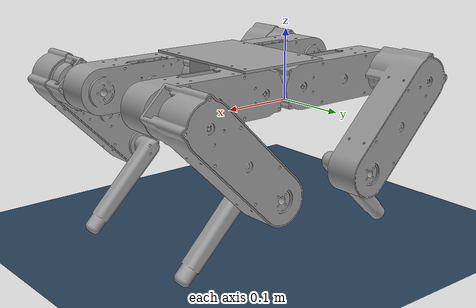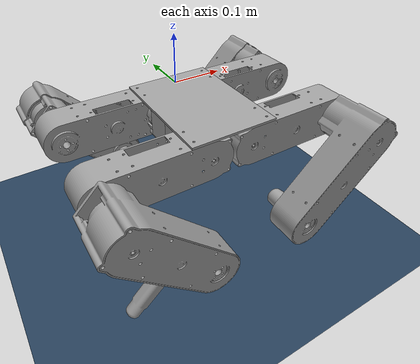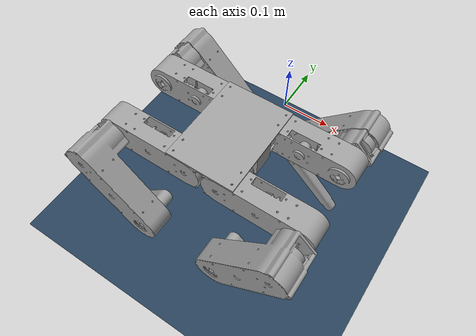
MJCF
<mujoco model="quadurdf">
  <compiler angle="radian"/>
  <asset>
    <mesh name="base_link" file="base_link.stl" scale="0.001 0.001 0.001"/>
    <mesh name="ACTUATOR_V2__HIP__v3_3" file="ACTUATOR_V2__HIP__v3_3.stl" scale="0.001 0.001 0.001"/>
    <mesh name="ACTUATOR_V2__HIP__v3_1" file="ACTUATOR_V2__HIP__v3_1.stl" scale="0.001 0.001 0.001"/>
    <mesh name="ACTUATOR_V2__HIP__v3_4" file="ACTUATOR_V2__HIP__v3_4.stl" scale="0.001 0.001 0.001"/>
    <mesh name="ACTUATOR_V2__HIP__v3_2" file="ACTUATOR_V2__HIP__v3_2.stl" scale="0.001 0.001 0.001"/>
    <mesh name="ACTUATOR_V2__KNEE__v6_1" file="ACTUATOR_V2__KNEE__v6_1.stl" scale="0.001 0.001 0.001"/>
    <mesh name="ACTUATOR_V2__KNEE__v6_2" file="ACTUATOR_V2__KNEE__v6_2.stl" scale="0.001 0.001 0.001"/>
    <mesh name="ACTUATOR_V2__KNEE__v6_3" file="ACTUATOR_V2__KNEE__v6_3.stl" scale="0.001 0.001 0.001"/>
    <mesh name="ACTUATOR_V2__KNEE__v6_4" file="ACTUATOR_V2__KNEE__v6_4.stl" scale="0.001 0.001 0.001"/>
    <mesh name="ANKLE_v3_1" file="ANKLE_v3_1.stl" scale="0.001 0.001 0.001"/>
    <mesh name="ANKLE_v3_2" file="ANKLE_v3_2.stl" scale="0.001 0.001 0.001"/>
    <mesh name="ANKLE_v3_3" file="ANKLE_v3_3.stl" scale="0.001 0.001 0.001"/>
    <mesh name="ANKLE_v3_4" file="ANKLE_v3_4.stl" scale="0.001 0.001 0.001"/>
    <mesh name="6200_MAH_BATTERY_v1_1" file="6200_MAH_BATTERY_v1_1.stl" scale="0.001 0.001 0.001"/>
    <texture name="grid" type="2d" builtin="checker" rgb1=".1 .2 .3"
    rgb2=".2 .3 .4" width="300" height="300" mark="edge" markrgb=".2 .3 .4"/>
    <material name="grid" texture="grid" texrepeat="2 2" texuniform="true"
    reflectance=".2"/> </asset>
  <worldbody>
    <geom name="ground" type="plane" pos="0 0 -.249" size="2 2 .1" material="grid" solimp=".99 .99 .01" solref=".001 1"/>
    <body name='robot'>
      <freejoint/>
      <body name='baselink'>
        <geom type="mesh" rgba="0.627451 0.627451 0.627451 1" mesh="base_link"/>
      </body>
      <body name='battery'>
        <geom type="mesh" rgba="0.627451 0.627451 0.627451 1" mesh="6200_MAH_BATTERY_v1_1"/>
      </body>
      <body name="ACTUATOR_V2__HIP__v3_3" pos="-0.104 -0.0822 0.034907">
        <inertial pos="-0.0382683 0.00233144 -0.034911" quat="0.0541169 0.705295 -0.0507367 0.705022" mass="5.04735" diaginertia="0.030841 0.0306039 0.00412905"/>
        <geom pos="0.104 0.0822 -0.034907" type="mesh" rgba="0.627451 0.627451 0.627451 1" mesh="ACTUATOR_V2__HIP__v3_3"/>
        <body name="ACTUATOR_V2__KNEE__v6_4" pos="-0.14687 0.039 -0.034907">
          <inertial pos="0.068909 0.0609505 3.65818e-06" quat="0.469232 0.460942 0.536234 0.528968" mass="5.55861" diaginertia="0.0346722 0.0346 0.00491082"/>
          <joint name="Revolute 8" pos="0 0 0" axis="0 -1 0"/>
          <geom pos="0.25087 0.0432 0" type="mesh" rgba="0.627451 0.627451 0.627451 1" mesh="ACTUATOR_V2__KNEE__v6_4"/>
          <body name="ANKLE_v3_3" pos="0.17587 0.0405 0">
            <inertial pos="-0.0564645 -0.0216477 -0.0395369" quat="-0.0534461 0.461697 -0.0121465 0.885343" mass="0.925771" diaginertia="0.00253162 0.00252784 0.000105545"/>
            <joint name="Revolute 11" pos="0 0 0" axis="0 1 0"/>
            <geom pos="0.075 0.0027 0" type="mesh" rgba="0.627451 0.627451 0.627451 1" mesh="ANKLE_v3_3"/>
          </body>
        </body>
      </body>
      <body name="ACTUATOR_V2__HIP__v3_1" pos="0.029 -0.0522 0.034907">
        <inertial pos="0.0382683 -0.0276686 -0.034903" quat="-0.0541169 0.705295 0.0507367 0.705022" mass="5.04735" diaginertia="0.030841 0.0306039 0.00412905"/>
        <geom pos="-0.029 0.0522 -0.034907" type="mesh" rgba="0.627451 0.627451 0.627451 1" mesh="ACTUATOR_V2__HIP__v3_1"/>
        <body name="ACTUATOR_V2__KNEE__v6_1" pos="0.14687 0.009 -0.034907">
          <inertial pos="-0.068909 0.0609505 -3.65818e-06" quat="0.528968 0.536234 0.460942 0.469232" mass="5.55861" diaginertia="0.0346722 0.0346 0.00491082"/>
          <joint name="Revolute 5" pos="0 0 0" axis="0 -1 0"/>
          <geom pos="-0.17587 0.0432 0" type="mesh" rgba="0.627451 0.627451 0.627451 1" mesh="ACTUATOR_V2__KNEE__v6_1"/>
          <body name="ANKLE_v3_1" pos="-0.17587 0.0405 0">
            <inertial pos="0.0564645 -0.0216477 -0.0395369" quat="-0.0121465 0.885343 -0.0534461 0.461697" mass="0.925771" diaginertia="0.00253162 0.00252784 0.000105545"/>
            <joint name="Revolute 9" pos="0 0 0" axis="0 -1 0"/>
            <geom pos="0 0.0027 0" type="mesh" rgba="0.627451 0.627451 0.627451 1" mesh="ANKLE_v3_1"/>
          </body>
        </body>
      </body>
      <body name="ACTUATOR_V2__HIP__v3_4" pos="-0.104 -0.214 0.034907">
        <inertial pos="-0.0382683 -0.00233144 -0.034903" quat="-0.0507367 0.705022 0.0541169 0.705295" mass="5.04735" diaginertia="0.030841 0.0306039 0.00412905"/>
        <geom pos="0.104 0.214 -0.034907" type="mesh" rgba="0.627451 0.627451 0.627451 1" mesh="ACTUATOR_V2__HIP__v3_4"/>
        <body name="ACTUATOR_V2__KNEE__v6_3" pos="-0.14687 -0.039 -0.034907">
          <inertial pos="0.068909 -0.0609505 -3.65818e-06" quat="0.536234 0.528968 0.469232 0.460942" mass="5.55861" diaginertia="0.0346722 0.0346 0.00491082"/>
          <joint name="Revolute 7" pos="0 0 0" axis="0 1 0"/>
          <geom pos="0.25087 0.253 0" type="mesh" rgba="0.627451 0.627451 0.627451 1" mesh="ACTUATOR_V2__KNEE__v6_3"/>
          <body name="ANKLE_v3_4" pos="0.17587 -0.0405 0">
            <inertial pos="-0.0564645 0.0216477 -0.0395369" quat="0.0534461 0.461697 0.0121465 0.885343" mass="0.925771" diaginertia="0.00253162 0.00252784 0.000105545"/>
            <joint name="Revolute 12" pos="0 0 0" axis="0 -1 0"/>
            <geom pos="0.075 0.2935 0" type="mesh" rgba="0.627451 0.627451 0.627451 1" mesh="ANKLE_v3_4"/>
          </body>
        </body>
      </body>
      <body name="ACTUATOR_V2__HIP__v3_2" pos="0.029 -0.214 0.034907">
        <inertial pos="0.0382683 -0.00233144 -0.034911" quat="0.0507367 0.705022 -0.0541169 0.705295" mass="5.04735" diaginertia="0.030841 0.0306039 0.00412905"/>
        <geom pos="-0.029 0.214 -0.034907" type="mesh" rgba="0.627451 0.627451 0.627451 1" mesh="ACTUATOR_V2__HIP__v3_2"/>
        <body name="ACTUATOR_V2__KNEE__v6_2" pos="0.14687 -0.039 -0.034907">
          <inertial pos="-0.068909 -0.0609505 3.65818e-06" quat="0.460942 0.469232 0.528968 0.536234" mass="5.55861" diaginertia="0.0346722 0.0346 0.00491082"/>
          <joint name="Revolute 6" pos="0 0 0" axis="0 1 0"/>
          <geom pos="-0.17587 0.253 0" type="mesh" rgba="0.627451 0.627451 0.627451 1" mesh="ACTUATOR_V2__KNEE__v6_2"/>
          <body name="ANKLE_v3_2" pos="-0.17587 -0.0405 0">
            <inertial pos="0.0564645 0.0216477 -0.0395369" quat="0.0121465 0.885343 0.0534461 0.461697" mass="0.925771" diaginertia="0.00253162 0.00252784 0.000105545"/>
            <joint name="Revolute 10" pos="0 0 0" axis="0 -1 0"/>
            <geom pos="0 0.2935 0" type="mesh" rgba="0.627451 0.627451 0.627451 1" mesh="ANKLE_v3_2"/>
          </body>
        </body>
      </body>
    </body>
  </worldbody>
</mujoco>
